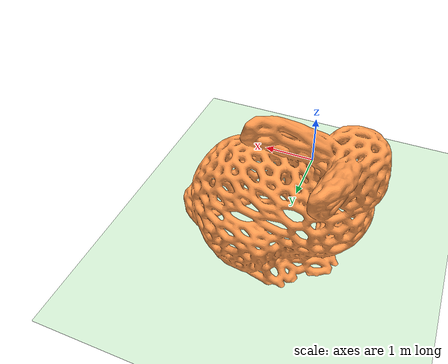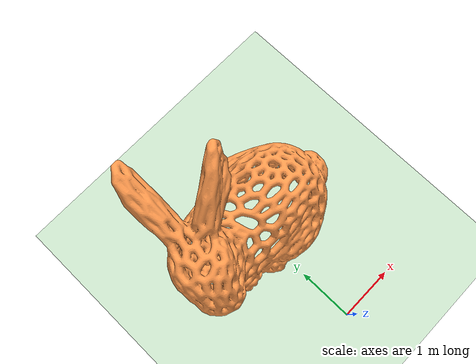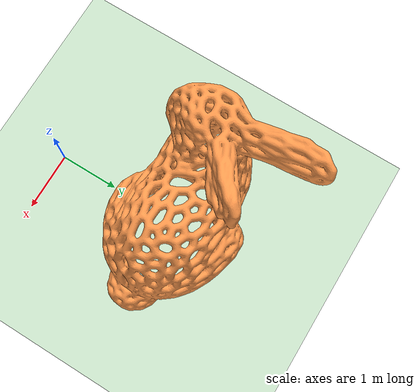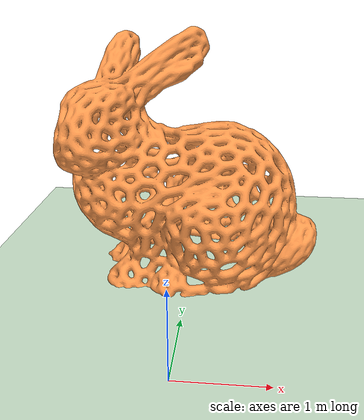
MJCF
<mujoco model="mesh_loading_example">

  <option gravity="0 0 -9.81" timestep="0.002"/>

  <asset>
    <mesh name="bunny_mesh" file="assets/bunny.stl" scale="0.1 0.1 0.1"/>
  </asset>

  <worldbody>
    <geom type="plane" size="5 5 0.1" rgba="0.8 0.9 0.8 1"/>
    <body name="bunny_body" pos="0 0 1.5">
      <geom type="mesh" mesh="bunny_mesh" rgba="1 0.6 0.3 1"/>
    </body>
  </worldbody>

</mujoco>
